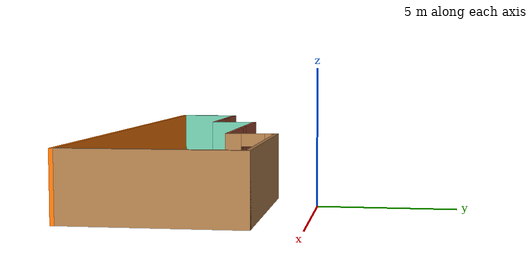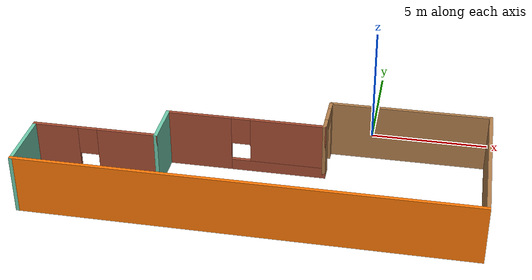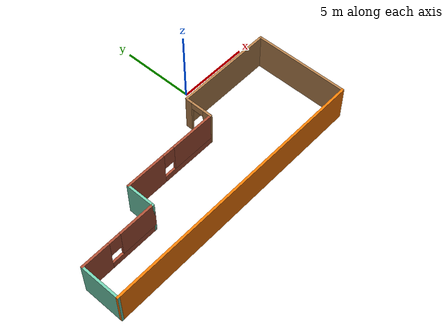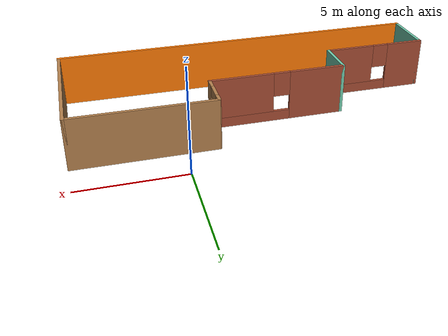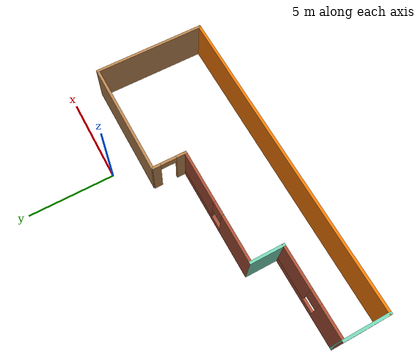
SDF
<?xml version='1.0'?>
<sdf version='1.6'>
  <model name='mybuilding'>
    <pose frame=''>-4.195 -4.895 0 0 -0 0</pose>
    <link name='Wall_0'>
      <collision name='Wall_0_Collision'>
        <geometry>
          <box>
            <size>6.75 0.15 2.5</size>
          </box>
        </geometry>
        <pose frame=''>0 0 1.25 0 -0 0</pose>
      </collision>
      <visual name='Wall_0_Visual'>
        <pose frame=''>0 0 1.25 0 -0 0</pose>
        <geometry>
          <box>
            <size>6.75 0.15 2.5</size>
          </box>
        </geometry>
        <material>
          <script>
            <uri>file://media/materials/scripts/gazebo.material</uri>
            <name>Gazebo/Wood</name>
          </script>
          <ambient>1 1 1 1</ambient>
        </material>
        <meta>
          <layer>0</layer>
        </meta>
      </visual>
      <pose frame=''>5.875 3.175 0 0 -0 0</pose>
    </link>
    <link name='Wall_1'>
      <collision name='Wall_1_Collision'>
        <geometry>
          <box>
            <size>6.5 0.15 2.5</size>
          </box>
        </geometry>
        <pose frame=''>0 0 1.25 0 -0 0</pose>
      </collision>
      <visual name='Wall_1_Visual'>
        <pose frame=''>0 0 1.25 0 -0 0</pose>
        <geometry>
          <box>
            <size>6.5 0.15 2.5</size>
          </box>
        </geometry>
        <material>
          <script>
            <uri>file://media/materials/scripts/gazebo.material</uri>
            <name>Gazebo/Wood</name>
          </script>
          <ambient>1 1 1 1</ambient>
        </material>
        <meta>
          <layer>0</layer>
        </meta>
      </visual>
      <pose frame=''>9.175 0 0 0 0 -1.5708</pose>
    </link>
    <link name='Wall_2'>
      <collision name='Wall_2_Collision'>
        <geometry>
          <box>
            <size>18.5 0.15 2.5</size>
          </box>
        </geometry>
        <pose frame=''>0 0 1.25 0 -0 0</pose>
      </collision>
      <visual name='Wall_2_Visual'>
        <pose frame=''>0 0 1.25 0 -0 0</pose>
        <geometry>
          <box>
            <size>18.5 0.15 2.5</size>
          </box>
        </geometry>
        <material>
          <script>
            <uri>file://media/materials/scripts/gazebo.material</uri>
            <name>Gazebo/Grey</name>
          </script>
          <ambient>0.996078 0.47451 0.0196078 1</ambient>
        </material>
        <meta>
          <layer>0</layer>
        </meta>
      </visual>
      <pose frame=''>0 -3.175 0 0 -0 3.14159</pose>
    </link>
    <link name='Wall_3'>
      <collision name='Wall_3_Collision'>
        <geometry>
          <box>
            <size>2.75 0.15 2.5</size>
          </box>
        </geometry>
        <pose frame=''>0 0 1.25 0 -0 0</pose>
      </collision>
      <visual name='Wall_3_Visual'>
        <pose frame=''>0 0 1.25 0 -0 0</pose>
        <geometry>
          <box>
            <size>2.75 0.15 2.5</size>
          </box>
        </geometry>
        <material>
          <script>
            <uri>file://media/materials/scripts/gazebo.material</uri>
            <name>Gazebo/Grey</name>
          </script>
          <ambient>0.435294 0.796078 0.67451 1</ambient>
        </material>
        <meta>
          <layer>0</layer>
        </meta>
      </visual>
      <pose frame=''>-9.175 -1.875 0 0 -0 1.5708</pose>
    </link>
    <link name='Wall_4'>
      <pose frame=''>-6.625 -0.575 0 0 -0 0</pose>
      <visual name='Wall_4_Visual_0'>
        <pose frame=''>-1.66207 0 1.25 0 -0 0</pose>
        <geometry>
          <box>
            <size>1.92586 0.15 2.5</size>
          </box>
        </geometry>
        <material>
          <script>
            <uri>file://media/materials/scripts/gazebo.material</uri>
            <name>Gazebo/Bricks</name>
          </script>
          <ambient>1 1 1 1</ambient>
        </material>
        <meta>
          <layer>0</layer>
        </meta>
      </visual>
      <collision name='Wall_4_Collision_0'>
        <geometry>
          <box>
            <size>1.92586 0.15 2.5</size>
          </box>
        </geometry>
        <pose frame=''>-1.66207 0 1.25 0 -0 0</pose>
      </collision>
      <visual name='Wall_4_Visual_1'>
        <pose frame=''>0.962928 0 0.25 0 -0 0</pose>
        <geometry>
          <box>
            <size>3.32415 0.15 0.5</size>
          </box>
        </geometry>
        <material>
          <script>
            <uri>file://media/materials/scripts/gazebo.material</uri>
            <name>Gazebo/Bricks</name>
          </script>
          <ambient>1 1 1 1</ambient>
        </material>
        <meta>
          <layer>0</layer>
        </meta>
      </visual>
      <collision name='Wall_4_Collision_1'>
        <geometry>
          <box>
            <size>3.32415 0.15 0.5</size>
          </box>
        </geometry>
        <pose frame=''>0.962928 0 0.25 0 -0 0</pose>
      </collision>
      <visual name='Wall_4_Visual_2'>
        <pose frame=''>1.36293 0 1.5 0 -0 0</pose>
        <geometry>
          <box>
            <size>2.52414 0.15 2</size>
          </box>
        </geometry>
        <material>
          <script>
            <uri>file://media/materials/scripts/gazebo.material</uri>
            <name>Gazebo/Bricks</name>
          </script>
          <ambient>1 1 1 1</ambient>
        </material>
        <meta>
          <layer>0</layer>
        </meta>
      </visual>
      <collision name='Wall_4_Collision_2'>
        <geometry>
          <box>
            <size>2.52414 0.15 2</size>
          </box>
        </geometry>
        <pose frame=''>1.36293 0 1.5 0 -0 0</pose>
      </collision>
      <visual name='Wall_4_Visual_3'>
        <pose frame=''>-0.299145 0 1.9 0 -0 0</pose>
        <geometry>
          <box>
            <size>0.8 0.15 1.2</size>
          </box>
        </geometry>
        <material>
          <script>
            <uri>file://media/materials/scripts/gazebo.material</uri>
            <name>Gazebo/Bricks</name>
          </script>
          <ambient>1 1 1 1</ambient>
        </material>
        <meta>
          <layer>0</layer>
        </meta>
      </visual>
      <collision name='Wall_4_Collision_3'>
        <geometry>
          <box>
            <size>0.8 0.15 1.2</size>
          </box>
        </geometry>
        <pose frame=''>-0.299145 0 1.9 0 -0 0</pose>
      </collision>
    </link>
    <link name='Wall_5'>
      <collision name='Wall_5_Collision'>
        <geometry>
          <box>
            <size>2 0.15 2.5</size>
          </box>
        </geometry>
        <pose frame=''>0 0 1.25 0 -0 0</pose>
      </collision>
      <visual name='Wall_5_Visual'>
        <pose frame=''>0 0 1.25 0 -0 0</pose>
        <geometry>
          <box>
            <size>2 0.15 2.5</size>
          </box>
        </geometry>
        <material>
          <script>
            <uri>file://media/materials/scripts/gazebo.material</uri>
            <name>Gazebo/Grey</name>
          </script>
          <ambient>0.435294 0.796078 0.67451 1</ambient>
        </material>
        <meta>
          <layer>0</layer>
        </meta>
      </visual>
      <pose frame=''>-4.075 0.35 0 0 -0 1.5708</pose>
    </link>
    <link name='Wall_6'>
      <pose frame=''>-0.775 1.275 0 0 -0 0</pose>
      <visual name='Wall_6_Visual_0'>
        <pose frame=''>-1.98207 0 1.25 0 -0 0</pose>
        <geometry>
          <box>
            <size>2.78586 0.15 2.5</size>
          </box>
        </geometry>
        <material>
          <script>
            <uri>file://media/materials/scripts/gazebo.material</uri>
            <name>Gazebo/Bricks</name>
          </script>
          <ambient>1 1 1 1</ambient>
        </material>
        <meta>
          <layer>0</layer>
        </meta>
      </visual>
      <collision name='Wall_6_Collision_0'>
        <geometry>
          <box>
            <size>2.78586 0.15 2.5</size>
          </box>
        </geometry>
        <pose frame=''>-1.98207 0 1.25 0 -0 0</pose>
      </collision>
      <visual name='Wall_6_Visual_1'>
        <pose frame=''>1.39293 0 0.25 0 -0 0</pose>
        <geometry>
          <box>
            <size>3.96414 0.15 0.5</size>
          </box>
        </geometry>
        <material>
          <script>
            <uri>file://media/materials/scripts/gazebo.material</uri>
            <name>Gazebo/Bricks</name>
          </script>
          <ambient>1 1 1 1</ambient>
        </material>
        <meta>
          <layer>0</layer>
        </meta>
      </visual>
      <collision name='Wall_6_Collision_1'>
        <geometry>
          <box>
            <size>3.96414 0.15 0.5</size>
          </box>
        </geometry>
        <pose frame=''>1.39293 0 0.25 0 -0 0</pose>
      </collision>
      <visual name='Wall_6_Visual_2'>
        <pose frame=''>1.79293 0 1.5 0 -0 0</pose>
        <geometry>
          <box>
            <size>3.16414 0.15 2</size>
          </box>
        </geometry>
        <material>
          <script>
            <uri>file://media/materials/scripts/gazebo.material</uri>
            <name>Gazebo/Bricks</name>
          </script>
          <ambient>1 1 1 1</ambient>
        </material>
        <meta>
          <layer>0</layer>
        </meta>
      </visual>
      <collision name='Wall_6_Collision_2'>
        <geometry>
          <box>
            <size>3.16414 0.15 2</size>
          </box>
        </geometry>
        <pose frame=''>1.79293 0 1.5 0 -0 0</pose>
      </collision>
      <visual name='Wall_6_Visual_3'>
        <pose frame=''>-0.189145 0 1.9 0 -0 0</pose>
        <geometry>
          <box>
            <size>0.8 0.15 1.2</size>
          </box>
        </geometry>
        <material>
          <script>
            <uri>file://media/materials/scripts/gazebo.material</uri>
            <name>Gazebo/Bricks</name>
          </script>
          <ambient>1 1 1 1</ambient>
        </material>
        <meta>
          <layer>0</layer>
        </meta>
      </visual>
      <collision name='Wall_6_Collision_3'>
        <geometry>
          <box>
            <size>0.8 0.15 1.2</size>
          </box>
        </geometry>
        <pose frame=''>-0.189145 0 1.9 0 -0 0</pose>
      </collision>
    </link>
    <link name='Wall_7'>
      <pose frame=''>2.525 2.2 0 0 -0 1.5708</pose>
      <visual name='Wall_7_Visual_0'>
        <pose frame=''>-0.689602 0 1.25 0 -0 0</pose>
        <geometry>
          <box>
            <size>0.620796 0.15 2.5</size>
          </box>
        </geometry>
        <material>
          <script>
            <uri>file://media/materials/scripts/gazebo.material</uri>
            <name>Gazebo/Wood</name>
          </script>
          <ambient>1 1 1 1</ambient>
        </material>
        <meta>
          <layer>0</layer>
        </meta>
      </visual>
      <collision name='Wall_7_Collision_0'>
        <geometry>
          <box>
            <size>0.620796 0.15 2.5</size>
          </box>
        </geometry>
        <pose frame=''>-0.689602 0 1.25 0 -0 0</pose>
      </collision>
      <visual name='Wall_7_Visual_1'>
        <pose frame=''>0.760398 0 1.25 0 -0 0</pose>
        <geometry>
          <box>
            <size>0.479204 0.15 2.5</size>
          </box>
        </geometry>
        <material>
          <script>
            <uri>file://media/materials/scripts/gazebo.material</uri>
            <name>Gazebo/Wood</name>
          </script>
          <ambient>1 1 1 1</ambient>
        </material>
        <meta>
          <layer>0</layer>
        </meta>
      </visual>
      <collision name='Wall_7_Collision_1'>
        <geometry>
          <box>
            <size>0.479204 0.15 2.5</size>
          </box>
        </geometry>
        <pose frame=''>0.760398 0 1.25 0 -0 0</pose>
      </collision>
      <visual name='Wall_7_Visual_2'>
        <pose frame=''>0.070796 0 2.25 0 -0 0</pose>
        <geometry>
          <box>
            <size>0.9 0.15 0.5</size>
          </box>
        </geometry>
        <material>
          <script>
            <uri>file://media/materials/scripts/gazebo.material</uri>
            <name>Gazebo/Wood</name>
          </script>
          <ambient>1 1 1 1</ambient>
        </material>
        <meta>
          <layer>0</layer>
        </meta>
      </visual>
      <collision name='Wall_7_Collision_2'>
        <geometry>
          <box>
            <size>0.9 0.15 0.5</size>
          </box>
        </geometry>
        <pose frame=''>0.070796 0 2.25 0 -0 0</pose>
      </collision>
    </link>
    <static>1</static>
  </model>
</sdf>
